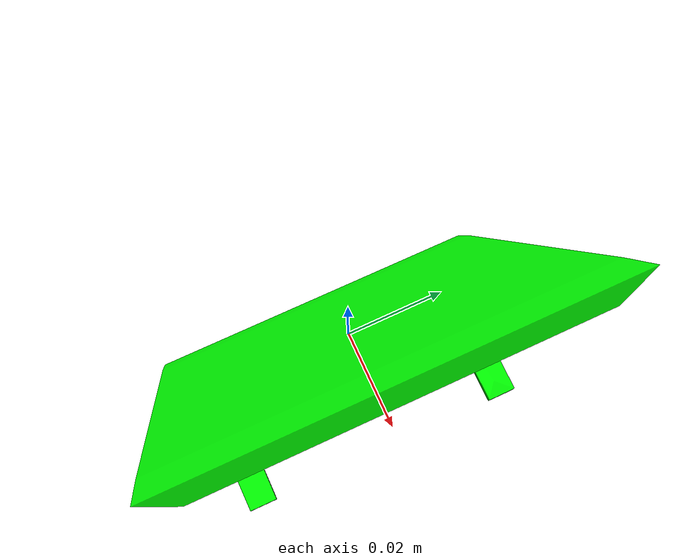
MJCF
<mujoco model="shapenetsem16">
  <asset>
    <mesh file="meshes/shapenetsem16/shapenetsem16_0.stl" name="shapenetsem16_0" scale="1 1 1"/>
    <mesh file="meshes/shapenetsem16/shapenetsem16_1.stl" name="shapenetsem16_1" scale="1 1 1"/>
    <mesh file="meshes/shapenetsem16/shapenetsem16_2.stl" name="shapenetsem16_2" scale="1 1 1"/>
    <mesh file="meshes/shapenetsem16/shapenetsem16_3.stl" name="shapenetsem16_3" scale="1 1 1"/>
    <mesh file="meshes/shapenetsem16/shapenetsem16_4.stl" name="shapenetsem16_4" scale="1 1 1"/>
  </asset>
  <worldbody>
    <body>
      <body name="collision">
        <geom pos="0 0 0" mesh="shapenetsem16_0" type="mesh" solimp="0.998 0.998 0.001" solref="0.001 1" density="100" friction="0.95 0.3 0.1" rgba="0 1 0 1" group="1" condim="4"/>
        <geom pos="0 0 0" mesh="shapenetsem16_1" type="mesh" solimp="0.998 0.998 0.001" solref="0.001 1" density="100" friction="0.95 0.3 0.1" rgba="0 1 0 1" group="1" condim="4"/>
        <geom pos="0 0 0" mesh="shapenetsem16_2" type="mesh" solimp="0.998 0.998 0.001" solref="0.001 1" density="100" friction="0.95 0.3 0.1" rgba="0 1 0 1" group="1" condim="4"/>
        <geom pos="0 0 0" mesh="shapenetsem16_3" type="mesh" solimp="0.998 0.998 0.001" solref="0.001 1" density="100" friction="0.95 0.3 0.1" rgba="0 1 0 1" group="1" condim="4"/>
        <geom pos="0 0 0" mesh="shapenetsem16_4" type="mesh" solimp="0.998 0.998 0.001" solref="0.001 1" density="100" friction="0.95 0.3 0.1" rgba="0 1 0 1" group="1" condim="4"/>
      </body>
      <body name="visual">
        <geom pos="0 0 0" mesh="shapenetsem16_0" type="mesh" rgba="0 1 0 1" conaffinity="0" contype="0" group="0" mass="0.0001"/>
        <geom pos="0 0 0" mesh="shapenetsem16_1" type="mesh" rgba="0 1 0 1" conaffinity="0" contype="0" group="0" mass="0.0001"/>
        <geom pos="0 0 0" mesh="shapenetsem16_2" type="mesh" rgba="0 1 0 1" conaffinity="0" contype="0" group="0" mass="0.0001"/>
        <geom pos="0 0 0" mesh="shapenetsem16_3" type="mesh" rgba="0 1 0 1" conaffinity="0" contype="0" group="0" mass="0.0001"/>
        <geom pos="0 0 0" mesh="shapenetsem16_4" type="mesh" rgba="0 1 0 1" conaffinity="0" contype="0" group="0" mass="0.0001"/>
      </body>
      <site rgba="0 0 0 0" size="0.005" pos="0 0 -0.06" name="bottom_site"/>
      <site rgba="0 0 0 0" size="0.005" pos="0 0 0.04" name="top_site"/>
      <site rgba="0 0 0 0" size="0.005" pos="0.025 0.025 0" name="horizontal_radius_site"/>
    </body>
  </worldbody>
</mujoco>
